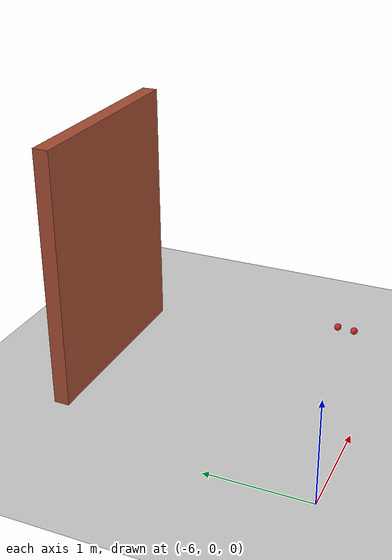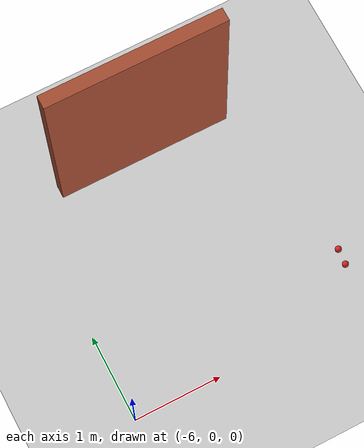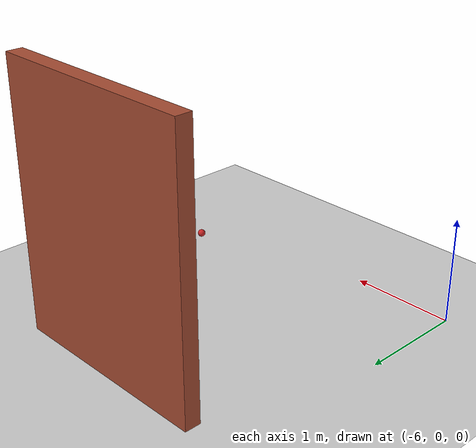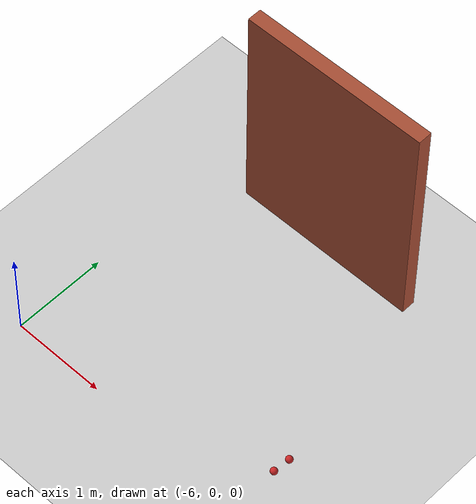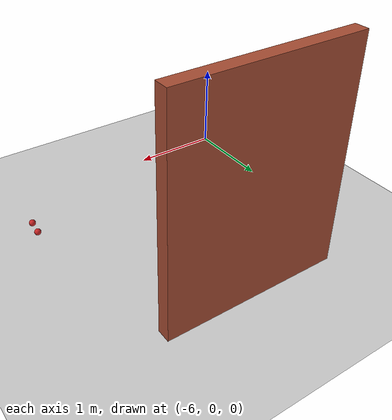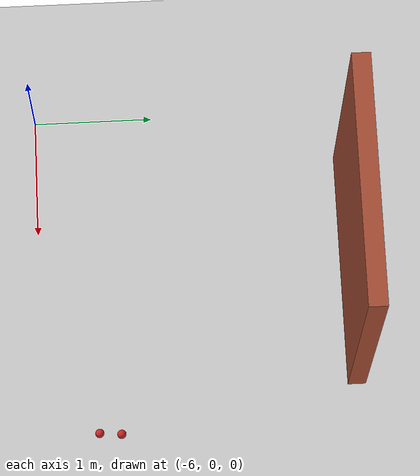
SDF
<sdf version="1.7">
 <world name="default">
  <model name="ground_plane">
   <static>1</static>
   <link name="link">
    <collision name="collision">
     <geometry><plane><normal>0 0 1</normal><size>100 100</size></plane></geometry>
     <surface>
      <contact><collide_bitmask>65535</collide_bitmask></contact>
      <friction><ode><mu>100</mu><mu2>50</mu2></ode></friction>
     </surface>
    </collision>
    <visual name="visual">
     <cast_shadows>0</cast_shadows>
     <geometry><plane><normal>0 0 1</normal><size>100 100</size></plane></geometry>
     <material>
      <script><uri>file://media/materials/scripts/gazebo.material</uri><name>Gazebo/Grey</name></script>
     </material>
    </visual>
   </link>
  </model>
  <model name="cricket_ball">
   <link name="link">
    <pose>0 0 0.0375 0 -0 0</pose>
    <inertial>
     <mass>0.1467</mass>
     <inertia>
      <ixx>8.25187e-05</ixx>
      <ixy>0</ixy>
      <ixz>0</ixz>
      <iyy>8.25187e-05</iyy>
      <iyz>0</iyz>
      <izz>8.25187e-05</izz>
     </inertia>
    </inertial>
    <collision name="collision">
     <geometry><sphere><radius>0.0375</radius></sphere></geometry>
     <surface>
      <contact>
       <poissons_ratio>0.347</poissons_ratio>
       <elastic_modulus>8.8e+09</elastic_modulus>
       <ode><kp>100000</kp><kd>100</kd><max_vel>100</max_vel><min_depth>0.001</min_depth></ode>
      </contact>
      <friction>
       <torsional>
        <coefficient>1</coefficient>
        <use_patch_radius>0</use_patch_radius>
        <surface_radius>0.01</surface_radius>
       </torsional>
      </friction>
     </surface>
    </collision>
    <visual name="visual">
     <geometry><sphere><radius>0.0375</radius></sphere></geometry>
     <material>
      <script><uri>file://media/materials/scripts/gazebo.material</uri><name>Gazebo/Red</name></script>
     </material>
    </visual>
    <velocity_decay><linear>0</linear><angular>0.005</angular></velocity_decay>
   </link>
   <pose>-3.24488 0.467417 -0.001014 0 -0 0</pose>
  </model>
  <model name="cricket_ball_0">
   <link name="link">
    <pose>0 0 0.0375 0 -0 0</pose>
    <inertial>
     <mass>0.1467</mass>
     <inertia>
      <ixx>8.25187e-05</ixx>
      <ixy>0</ixy>
      <ixz>0</ixz>
      <iyy>8.25187e-05</iyy>
      <iyz>0</iyz>
      <izz>8.25187e-05</izz>
     </inertia>
    </inertial>
    <collision name="collision">
     <geometry><sphere><radius>0.0375</radius></sphere></geometry>
     <surface>
      <contact>
       <poissons_ratio>0.347</poissons_ratio>
       <elastic_modulus>8.8e+09</elastic_modulus>
       <ode><kp>100000</kp><kd>100</kd><max_vel>100</max_vel><min_depth>0.001</min_depth></ode>
      </contact>
      <friction>
       <torsional>
        <coefficient>1</coefficient>
        <use_patch_radius>0</use_patch_radius>
        <surface_radius>0.01</surface_radius>
       </torsional>
      </friction>
     </surface>
    </collision>
    <visual name="visual">
     <geometry><sphere><radius>0.0375</radius></sphere></geometry>
     <material>
      <script><uri>file://media/materials/scripts/gazebo.material</uri><name>Gazebo/Red</name></script>
     </material>
    </visual>
    <velocity_decay><linear>0</linear><angular>0.005</angular></velocity_decay>
   </link>
   <pose>-3.22979 0.649662 -0.001014 0 -0 0</pose>
  </model>
  <model name="walltest2">
   <pose>-1.19528 5.24996 0 0 -0 0</pose>
   <link name="Wall_7">
    <collision name="Wall_7_Collision">
     <geometry><box><size>2 0.15 2.5</size></box></geometry>
     <pose>0 0 1.25 0 -0 0</pose>
    </collision>
    <visual name="Wall_7_Visual">
     <pose>0 0 1.25 0 -0 0</pose>
     <geometry><box><size>2 0.15 2.5</size></box></geometry>
     <material>
      <script><uri>file://media/materials/scripts/gazebo.material</uri><name>Gazebo/Bricks</name></script>
      <ambient>1 1 1 1</ambient>
     </material>
     <meta><layer>0</layer></meta>
    </visual>
    <pose>-3.38374 -2.6187 0 0 -0 3.14159</pose>
   </link>
   <static>1</static>
  </model>
 </world>
</sdf>
